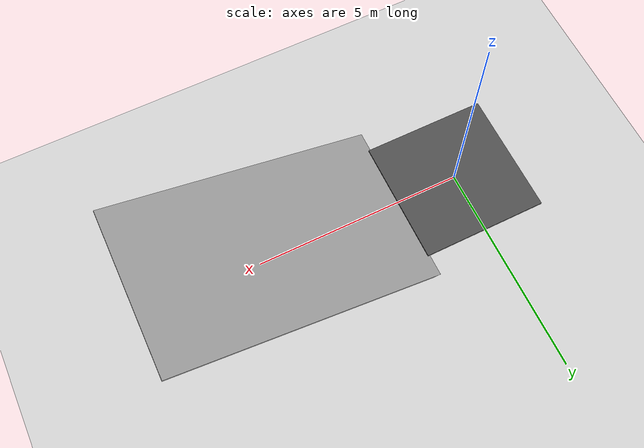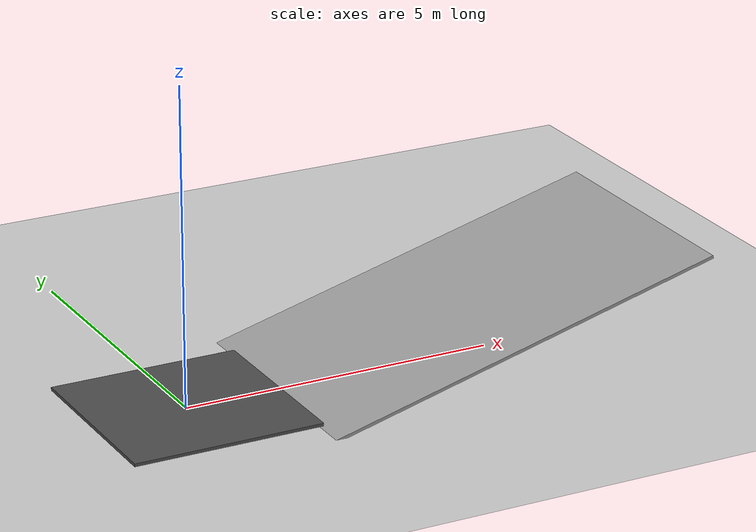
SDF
<?xml version="1.0" ?>
<sdf version="1.6">
  <world name="agribot_test_bench">
    <!-- Physics settings -->
    <physics type="ode">
      <max_step_size>0.004</max_step_size>
      <real_time_factor>1.0</real_time_factor>
      <real_time_update_rate>250</real_time_update_rate>
      <gravity>0 0 -9.81</gravity>
    </physics>

    <!-- Global light source -->
    <include>
      <uri>model://sun</uri>
    </include>

    <!-- Ground plane -->
    <include>
      <uri>model://ground_plane</uri>
    </include>

    <!-- Test Ramp: 15° incline for stability testing -->
    <!-- Lengthened to 7m so robot stops on ramp rather than driving off the far edge -->
    <!-- Near edge stays at ~x=1m; centre moved forward to x=4.4m to fit extra length -->
    <model name="test_ramp">
      <static>true</static>
      <pose>4.4 0 0.750 0 -0.26 0</pose>
      <link name="link">
        <collision name="collision">
          <geometry>
            <box>
              <size>7.0 4.0 0.05</size>
            </box>
          </geometry>
          <surface>
            <friction>
              <ode>
                <mu>1.0</mu>
                <mu2>1.0</mu2>
              </ode>
            </friction>
            <contact>
              <ode>
                <kp>1000000.0</kp>
                <kd>10.0</kd>
              </ode>
            </contact>
          </surface>
        </collision>
        <visual name="visual">
          <geometry>
            <box>
              <size>7.0 4.0 0.05</size>
            </box>
          </geometry>
          <material>
            <script>
              <uri>file://media/materials/scripts/gazebo.material</uri>
              <name>Gazebo/Grey</name>
            </script>
          </material>
        </visual>
      </link>
    </model>

    <!-- High-friction zone for pivot testing -->
    <!-- Flat area with high friction to test skid-steer scrubbing -->
    <model name="friction_zone">
      <static>true</static>
      <pose>0 0 0.025 0 0 0</pose>
      <link name="link">
        <collision name="collision">
          <geometry>
            <box>
              <size>3.0 3.0 0.05</size>
            </box>
          </geometry>
          <surface>
            <friction>
              <ode>
                <mu>1.2</mu>
                <mu2>0.8</mu2>
              </ode>
            </friction>
          </surface>
        </collision>
        <visual name="visual">
          <geometry>
            <box>
              <size>3.0 3.0 0.05</size>
            </box>
          </geometry>
          <material>
            <script>
              <uri>file://media/materials/scripts/gazebo.material</uri>
              <name>Gazebo/DarkGrey</name>
            </script>
          </material>
        </visual>
      </link>
    </model>

    <!-- Scene settings -->
    <scene>
      <ambient>0.6 0.6 0.5 1</ambient>
      <background>0.7 0.8 0.9 1</background>
      <shadows>true</shadows>
    </scene>
  </world>
</sdf>
